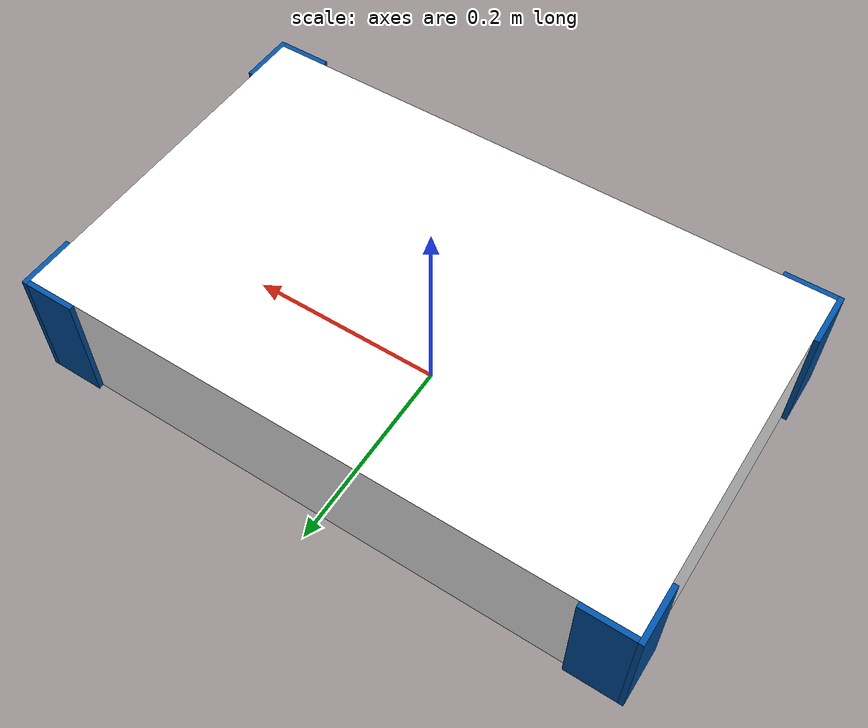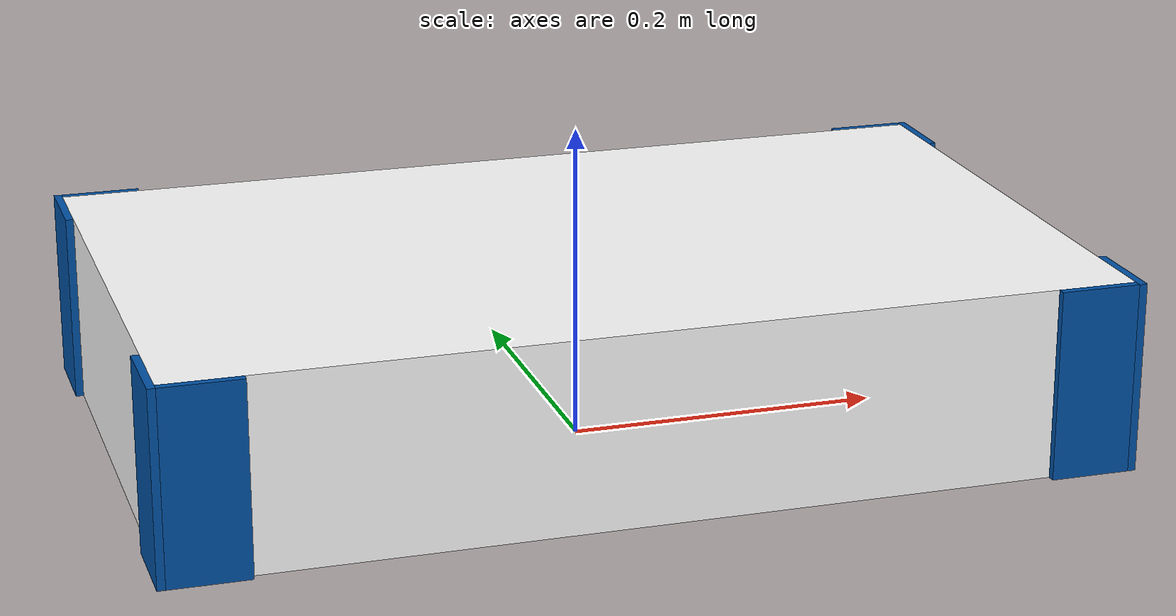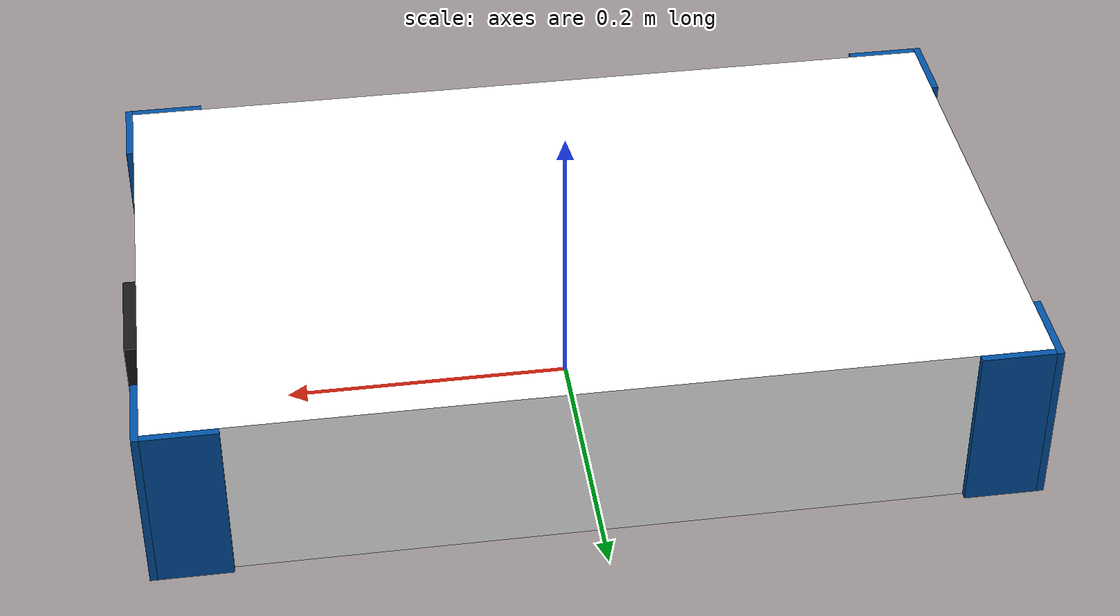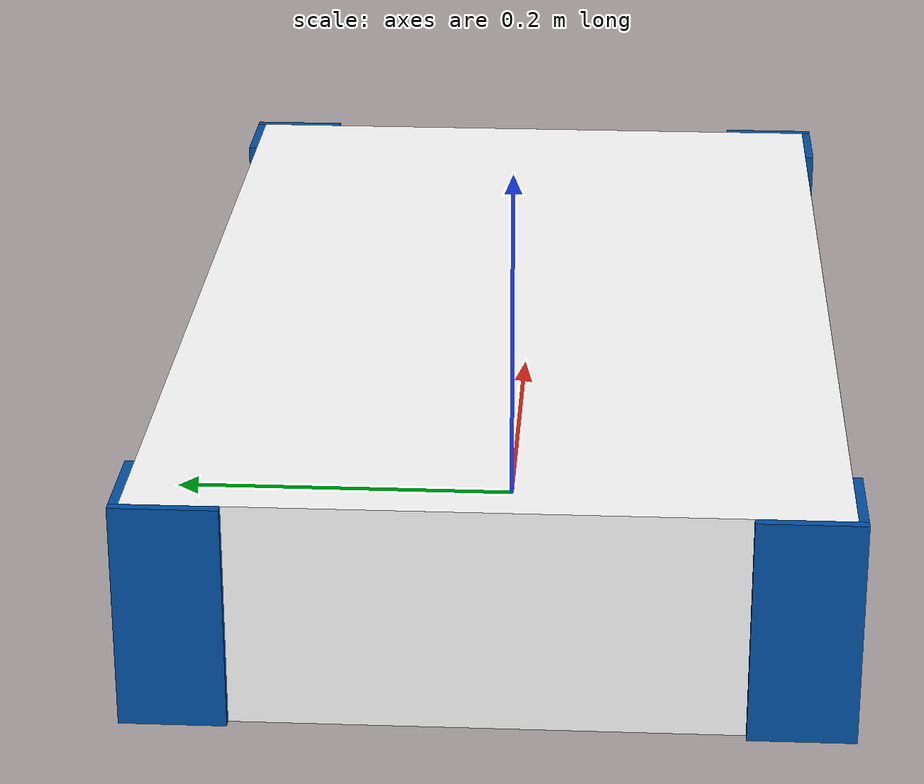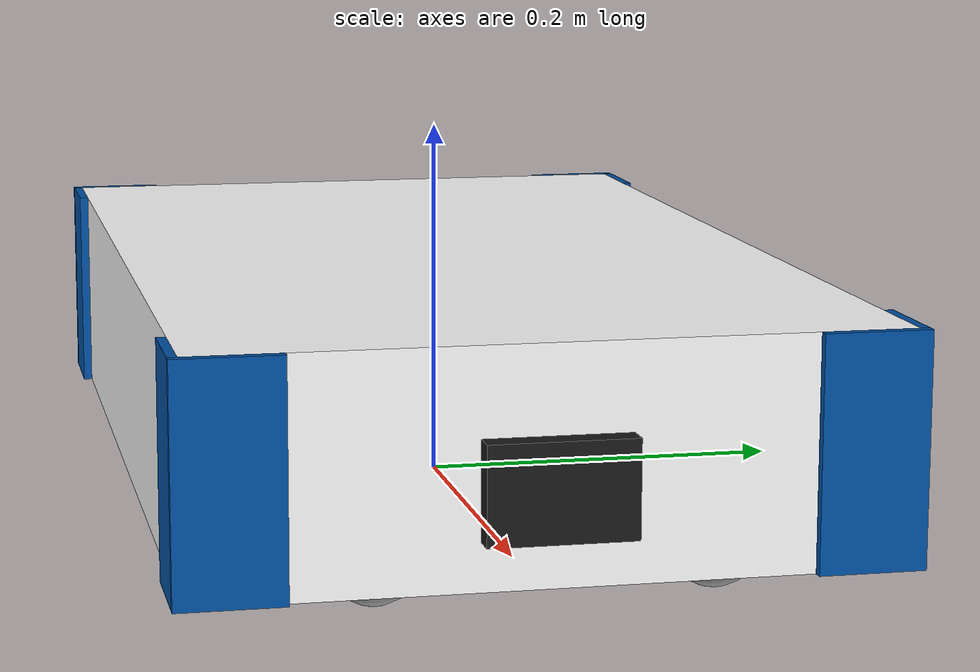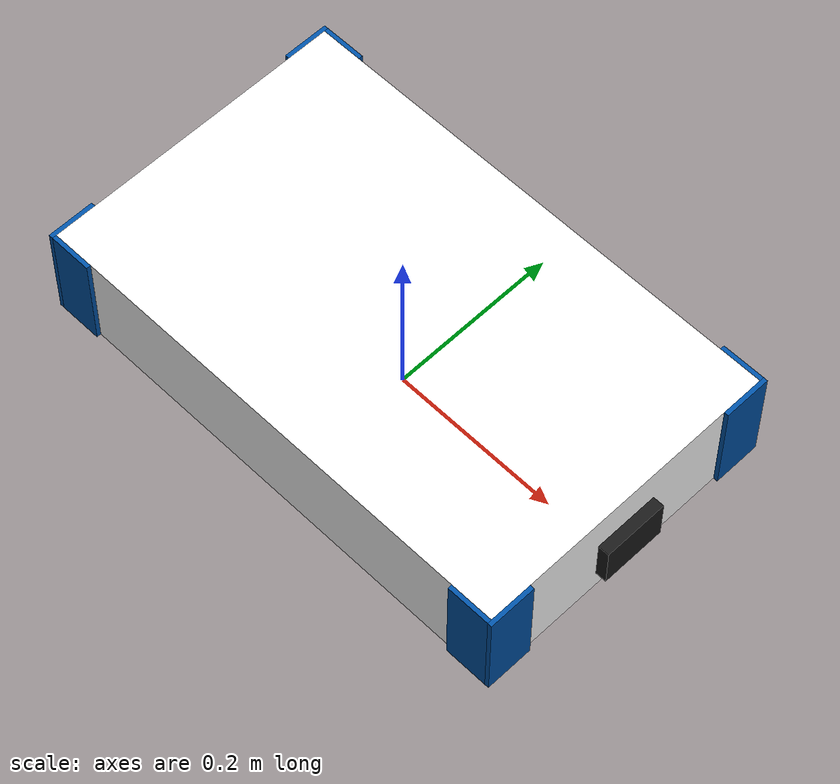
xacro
<?xml version="1.0"?>
<robot name="ad_r1m_sim" xmlns:xacro="http://www.ros.org/wiki/xacro">
    <xacro:arg name="robot_namespace" default="" />

    <!-- Build prefix based on namespace -->
    <xacro:property name="robot_namespace" value="$(arg robot_namespace)" />
    <xacro:property name="prefix" value="" />
    <xacro:if value="${robot_namespace != ''}">
        <xacro:property name="prefix" value="${robot_namespace}/" />
    </xacro:if>

    <!-- Instantiate base robot model -->
    <xacro:include filename="$(find ad_r1m_description)/urdf/ad_r1m_base.urdf.xacro" />
    <xacro:ad_r1m_base prefix="${prefix}" use_sim="true" />

    <ros2_control name="GZSimSystem" type="system">
        <hardware>
            <plugin>gz_ros2_control/GazeboSimSystem</plugin>
        </hardware>
        <joint name="left_wheel_joint">
            <command_interface name="velocity">
                <param name="min">-18</param>
                <param name="max">18</param>
            </command_interface>
            <state_interface name="velocity"/>
            <state_interface name="position"/>
        </joint>
        <joint name="right_wheel_joint">
            <command_interface name="velocity">
                <param name="min">-18</param>
                <param name="max">18</param>
            </command_interface>
            <state_interface name="velocity"/>
            <state_interface name="position"/>
        </joint>
    </ros2_control>

    <gazebo>
        <plugin filename="gz_ros2_control-system" name="gz_ros2_control::GazeboSimROS2ControlPlugin">
            <parameters>$(find ad_r1m_control)/config/controllers.yaml</parameters>
            <parameters>$(find ad_r1m_gazebo)/config/gaz_ros2_ctl_use_sim.yaml</parameters>
            <robot_param>robot_description</robot_param>
            <robot_param_node>robot_state_publisher</robot_param_node>
            <ros>
                <namespace>$(arg robot_namespace)</namespace>
            </ros>
        </plugin>
    </gazebo>
</robot>

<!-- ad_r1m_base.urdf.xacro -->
<robot xmlns:xacro="http://www.ros.org/wiki/xacro">

<xacro:include filename="_inertial_macros.xacro" />
<xacro:include filename="_lidar.xacro" />
<xacro:include filename="_tof_adtf3175d.xacro" />
<xacro:include filename="_imu_adis16470.xacro" />

<xacro:macro name="ad_r1m_base" params="prefix use_sim:=false">

    <xacro:property name="chassis_length" value="0.59"/>
    <xacro:property name="chassis_width" value="0.36"/>
    <xacro:property name="chassis_height" value="0.12"/>
    <xacro:property name="base_width" value="0.22"/>
    <xacro:property name="wheel_separation" value="0.29"/>
    <xacro:property name="chassis_clearance_ground" value="0.010"/>
    <xacro:property name="chassis_zoff" value="${(chassis_clearance_ground + chassis_height/2)}"/>
    <xacro:property name="chassis_mass" value="1.0"/>

    <xacro:property name="wheel_radius" value="0.05"/>
    <xacro:property name="wheel_width" value="0.025"/>
    <xacro:property name="wheel_mass" value="0.5"/> <!-- SLIP_FIX was 0.05 -->

    <xacro:property name="caster_wheel_radius" value="0.025"/>
    <xacro:property name="caster_wheel_mass" value="0.01"/>
    <xacro:property name="caster_wheel_zoff" value="${caster_wheel_radius}"/>

    <xacro:property name="bumper_thickness" value="0.005"/>
    <xacro:property name="bumper_length" value="0.05"/>
    <xacro:property name="bumper_height" value="${chassis_height}"/>

    <xacro:property name="camera_length" value="0.065"/>
    <xacro:property name="camera_height" value="0.05"/>
    <xacro:property name="camera_offset_above_chassis" value="0.025"/>
    <xacro:property name="camera_overhang" value="0.013"/>

    <material name="white"><color rgba="1.0 1.0 1.0 1.0"/></material>
    <material name="adi_blue"><color rgba="0.0 0.32 0.65 1.0"/></material>
    <material name="gray"><color rgba="0.65 0.65 0.65 1.0"/></material>
    <material name="black"><color rgba="0.1 0.1 0.1 1.0"/></material>

    <!-- BASE LINK -->

    <link name="${prefix}base_link"></link>

    <!-- HARDWARE MODULES -->

    <xacro:imu_adis16470 prefix="${prefix}" parent="${prefix}base_link">
        <origin xyz="0.180 0 ${wheel_radius}" rpy="${pi} 0 ${-pi/2}"/>
    </xacro:imu_adis16470>

    <xacro:tof_adtf3175d prefix="${prefix}" parent="${prefix}base_link" use_sim="${use_sim}">
        <origin xyz="${chassis_length/2 + camera_overhang - camera_length/2} 0 ${chassis_clearance_ground + camera_offset_above_chassis + camera_height/2}" rpy="0 0 0" />
    </xacro:tof_adtf3175d>

    <xacro:lidar prefix="${prefix}" parent="${prefix}base_link">
        <origin xyz="${chassis_length/2 + camera_overhang - camera_length/2} 0 ${chassis_clearance_ground + camera_offset_above_chassis + camera_height/2}" rpy="0 0 0" />
    </xacro:lidar>

    <!-- BASE_FOOTPRINT LINK -->

    <joint name="base_footprint_joint" type="fixed">
        <parent link="${prefix}base_link"/>
        <child link="${prefix}base_footprint"/>
        <origin xyz="0 0 0" rpy="0 0 0"/>
    </joint>

    <link name="${prefix}base_footprint"></link>

    <!-- CHASSIS LINK -->

    <joint name="chassis_joint" type="fixed">
        <parent link="${prefix}base_link"/>
        <child link="${prefix}chassis"/>
        <origin xyz="0 0 ${chassis_zoff}"/>
    </joint>

    <link name="${prefix}chassis">
        <visual>
            <geometry>
                <box size="${chassis_length} ${chassis_width} ${chassis_height}"/>
            </geometry>
            <material name="white"/>
        </visual>
        <collision>
            <geometry>
                <box size="${chassis_length} ${chassis_width} ${chassis_height}"/>
            </geometry>
        </collision>
        <xacro:inertial_box mass="10.0" x="${chassis_length}" y="${chassis_width}" z="${chassis_height}">
            <origin xyz="0 0 0" rpy="0 0 0"/>
        </xacro:inertial_box>
    </link>

    <gazebo reference="${prefix}chassis">
        <material>
            <ambient>1.0 1.0 1.0 1</ambient>
            <diffuse>1.0 1.0 1.0 1</diffuse>
            <specular>1.0 1.0 1.0 1</specular>
        </material>
    </gazebo>

    <!-- CORNER BUMPERS (L-shaped: lateral + front/rear sections) -->
    <xacro:macro name="corner_bumper" params="name x_reflect y_reflect">
        <!-- Lateral section (along Y, on the side) -->
        <joint name="${prefix}${name}_bumper_lat_joint" type="fixed">
            <parent link="${prefix}chassis"/>
            <child link="${prefix}${name}_bumper_lat"/>
	    <origin xyz="${x_reflect*(chassis_length/2 - bumper_length/2)} ${y_reflect*(chassis_width/2 + bumper_thickness/2)} 0" rpy="0 0 0"/>
        </joint>

        <link name="${prefix}${name}_bumper_lat">
            <visual>
                <geometry>
                    <box size="${bumper_length} ${bumper_thickness} ${bumper_height}"/>
                </geometry>
                <material name="adi_blue"/>
            </visual>
        </link>

        <gazebo reference="${prefix}${name}_bumper_lat">
            <material>
                <ambient>0.0 0.0 0.8 1</ambient>
                <diffuse>0.0 0.0 0.8 1</diffuse>
                <specular>0.0 0.0 0.8 1</specular>
            </material>
        </gazebo>

        <!-- Front/rear section (along X, on the front/back) -->
        <joint name="${prefix}${name}_bumper_front_joint" type="fixed">
            <parent link="${prefix}chassis"/>
            <child link="${prefix}${name}_bumper_front"/>
	    <origin xyz="${x_reflect*(chassis_length/2 + bumper_thickness/2)} ${y_reflect*(chassis_width/2 - bumper_length/2 + bumper_thickness/2)} 0" rpy="0 0 0"/>
        </joint>

        <link name="${prefix}${name}_bumper_front">
            <visual>
                <geometry>
                    <box size="${bumper_thickness} ${bumper_length + bumper_thickness} ${bumper_height}"/>
                </geometry>
                <material name="adi_blue"/>
            </visual>
        </link>

        <gazebo reference="${prefix}${name}_bumper_front">
            <material>
                <ambient>0.0 0.0 0.8 1</ambient>
                <diffuse>0.0 0.0 0.8 1</diffuse>
                <specular>0.0 0.0 0.8 1</specular>
            </material>
        </gazebo>
    </xacro:macro>

    <xacro:corner_bumper name="front_left" x_reflect="1" y_reflect="1"/>
    <xacro:corner_bumper name="front_right" x_reflect="1" y_reflect="-1"/>
    <xacro:corner_bumper name="rear_left" x_reflect="-1" y_reflect="1"/>
    <xacro:corner_bumper name="rear_right" x_reflect="-1" y_reflect="-1"/>

    <!-- LEFT WHEEL LINK -->

    <joint name="left_wheel_joint" type="continuous">
        <parent link="${prefix}base_link"/>
        <child link="${prefix}left_wheel"/>
        <origin xyz="0 ${wheel_separation/2} ${wheel_radius}" rpy="-${pi/2} 0 0" />
        <axis xyz="0 0 1"/>
    </joint>

    <link name="${prefix}left_wheel">
        <visual>
            <geometry>
                <cylinder radius="${wheel_radius}" length="${wheel_width}"/>
            </geometry>
            <material name="gray"/>
        </visual>
        <collision>
            <geometry>
                <cylinder radius="${wheel_radius}" length="${wheel_width}"/> <!-- SLIP_FIX was sphere -->
            </geometry>
        </collision>
        <xacro:inertial_cylinder mass="${wheel_mass}" length="${wheel_width}" radius="${wheel_radius}">
            <origin xyz="0 0 0" rpy="0 0 0"/>
        </xacro:inertial_cylinder>
    </link>

    <gazebo reference="${prefix}left_wheel">
        <material>
            <ambient>0.5 0.5 0.5 1</ambient>
            <diffuse>0.5 0.5 0.5 1</diffuse>
            <specular>0.5 0.5 0.5 1</specular>
        </material>
        <collision>
            <surface>
                <friction><ode><mu>1.5</mu><mu2>1.5</mu2></ode></friction>
                <contact><ode><kp>1e6</kp><kd>100</kd><min_depth>0.001</min_depth><max_vel>0.1</max_vel></ode></contact>
            </surface>
        </collision>
    </gazebo>

    <!-- RIGHT WHEEL LINK -->

    <joint name="right_wheel_joint" type="continuous">
        <parent link="${prefix}base_link"/>
        <child link="${prefix}right_wheel"/>
        <origin xyz="0 ${-wheel_separation/2} ${wheel_radius}" rpy="${pi/2} 0 0" />
        <axis xyz="0 0 -1"/>
    </joint>

    <link name="${prefix}right_wheel">
        <visual>
            <geometry>
                <cylinder radius="${wheel_radius}" length="${wheel_width}"/>
            </geometry>
            <material name="gray"/>
        </visual>
        <collision>
            <geometry>
                <cylinder radius="${wheel_radius}" length="${wheel_width}"/> <!-- SLIP_FIX was sphere -->
            </geometry>
        </collision>
        <xacro:inertial_cylinder mass="${wheel_mass}" length="${wheel_width}" radius="${wheel_radius}">
            <origin xyz="0 0 0" rpy="0 0 0"/>
        </xacro:inertial_cylinder>
    </link>

    <gazebo reference="${prefix}right_wheel">
        <material>
            <ambient>0.5 0.5 0.5 1</ambient>
            <diffuse>0.5 0.5 0.5 1</diffuse>
            <specular>0.5 0.5 0.5 1</specular>
        </material>
        <collision>
            <surface>
                <friction><ode><mu>1.5</mu><mu2>1.5</mu2></ode></friction>
                <contact><ode><kp>1e6</kp><kd>100</kd><min_depth>0.001</min_depth><max_vel>0.1</max_vel></ode></contact>
            </surface>
        </collision>
    </gazebo>

    <!-- CASTER WHEEL LINKS -->
    <xacro:macro name="caster_wheel" params="prefix parent x_reflect y_reflect">
        <link name="${prefix}_link">
            <visual>
                <geometry>
                    <sphere radius="${caster_wheel_radius}"/>
                </geometry>
                <material name="gray"/>
            </visual>
            <collision>
                <origin xyz="0 0 0" rpy="0 0 0"/>
                <geometry>
                    <sphere radius="${caster_wheel_radius}"/>
                </geometry>
            </collision>
            <xacro:inertial_sphere mass="${caster_wheel_mass}" radius="${caster_wheel_radius}">
                <origin xyz="0 0 0" rpy="0 0 0"/>
            </xacro:inertial_sphere>
        </link>

        <joint name="${prefix}_joint" type="fixed">
            <parent link="${parent}"/>
            <child link="${prefix}_link"/>
            <origin xyz="${x_reflect*(chassis_length/2-caster_wheel_radius)} ${y_reflect*(base_width/2-caster_wheel_radius)} ${caster_wheel_zoff}" rpy="0 0 0"/>
        </joint>

        <gazebo reference="${prefix}_link">
            <material>
                <ambient>0.5 0.5 0.5 1</ambient>
                <diffuse>0.5 0.5 0.5 1</diffuse>
                <specular>0.5 0.5 0.5 1</specular>
            </material>
            <collision>
                <surface>
                    <friction><ode><mu>0.001</mu><mu2>0.001</mu2></ode></friction>
                    <contact><ode><kp>1e6</kp><kd>100</kd><min_depth>0.001</min_depth><max_vel>0.1</max_vel></ode></contact>
                </surface>
            </collision>
        </gazebo>
    </xacro:macro>

    <xacro:caster_wheel parent="${prefix}base_link" prefix="${prefix}front_left_caster" x_reflect="1" y_reflect="1"/>
    <xacro:caster_wheel parent="${prefix}base_link" prefix="${prefix}front_right_caster" x_reflect="1" y_reflect="-1"/>
    <xacro:caster_wheel parent="${prefix}base_link" prefix="${prefix}rear_left_caster" x_reflect="-1" y_reflect="1"/>
    <xacro:caster_wheel parent="${prefix}base_link" prefix="${prefix}rear_right_caster" x_reflect="-1" y_reflect="-1"/>

</xacro:macro>
</robot>

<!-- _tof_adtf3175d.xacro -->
<robot xmlns:xacro="http://www.ros.org/wiki/xacro">

<xacro:macro name="tof_adtf3175d" params="prefix parent use_sim:=false *origin">

    <!-- Optical frame rotation differs: real driver flips image internally -->
    <xacro:property name="optical_sign" value="${-1 if use_sim else 1}"/>

    <joint name="cam1_adtf31xx_joint" type="fixed">
        <parent link="${parent}"/>
        <child link="${prefix}cam1_adtf31xx"/>
        <xacro:insert_block name="origin" />
    </joint>

    <link name="${prefix}cam1_adtf31xx">
        <inertial>
            <origin xyz="0 0 0" rpy="0 0 0"/>
            <mass value="0.125"/>
            <inertia ixx="0.001" ixy="0" ixz="0" iyy="0.001" iyz="0" izz="0.001" />
        </inertial>

        <collision>
            <origin xyz="0 0 0" rpy="0 0 0"/>
            <geometry>
                <box size="0.065 0.075 0.05"/>
            </geometry>
        </collision>

        <visual>
            <origin xyz="0 0 0" rpy="0 0 0"/>
            <geometry>
                <box size="0.065 0.075 0.05"/>
            </geometry>
            <material name="black"/>
        </visual>
    </link>

    <joint name="cam1_adtf31xx_optical_joint" type="fixed">
        <parent link="${prefix}cam1_adtf31xx"/>
        <child link="${prefix}cam1_adtf31xx_optical"/>
        <origin xyz="0 0 0" rpy="${optical_sign * pi/2} 0 ${optical_sign * pi/2}"/>
    </joint>
    <link name="${prefix}cam1_adtf31xx_optical"></link>

    <joint name="cam1_scan_joint" type="fixed">
        <parent link="${prefix}cam1_adtf31xx"/>
        <child link="${prefix}cam1_scan"/>
        <origin xyz="0 0 0" rpy="${pi} 0 0"/>
    </joint>
    <link name="${prefix}cam1_scan"></link>

    <gazebo reference="${prefix}cam1_adtf31xx">
        <material>
            <ambient>0.1 0.1 0.1 1</ambient>
            <diffuse>0.1 0.1 0.1 1</diffuse>
            <specular>0.1 0.1 0.1 1</specular>
        </material>

        <!-- 75deg FOV, 512x512, 0.3-5.0m range -->
        <sensor name="cam1_depth" type="rgbd_camera">
            <pose>0 0 0 0 0 0</pose>
            <visualize>true</visualize>
            <update_rate>30</update_rate>
            <topic>cam1</topic>
            <gz_frame_id>${prefix}cam1_adtf31xx</gz_frame_id>
            <camera>
                <horizontal_fov>1.309</horizontal_fov>
                <image>
                    <width>512</width>
                    <height>512</height>
                    <format>R8G8B8</format>
                </image>
                <clip>
                    <near>0.3</near>
                    <far>5.0</far>
                </clip>
                <noise>
                    <type>gaussian</type>
                    <mean>0.0</mean>
                    <stddev>0.005</stddev>
                </noise>
            </camera>
        </sensor>
    </gazebo>

</xacro:macro>
</robot>

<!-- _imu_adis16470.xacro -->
<robot xmlns:xacro="http://www.ros.org/wiki/xacro" >

<xacro:macro name="imu_adis16470" params="prefix parent *origin">

    <joint name="imu_joint" type="fixed">
        <parent link="${parent}"/>
        <child link="${prefix}imu"/>
        <xacro:insert_block name="origin" />
    </joint>

    <link name="${prefix}imu">
        <inertial>
            <origin xyz="0 0 0" rpy="0 0 0"/>
            <mass value="0.001"/>
            <inertia ixx="0.00001" ixy="0" ixz="0" iyy="0.00001" iyz="0" izz="0.00001" />
        </inertial>

        <collision>
            <origin xyz="0 0 0" rpy="0 0 0"/>
            <geometry>
                <box size="0.015 0.01 0.01"/>
            </geometry>
        </collision>

        <visual>
            <origin xyz="0 0 0" rpy="0 0 0"/>
            <geometry>
                <box size="0.015 0.01 0.01"/>
            </geometry>
            <material name="white">
                <color rgba="1 1 1 1"/>
            </material>
        </visual>
    </link>

    <gazebo reference="${prefix}imu">
        <sensor name="imu_sensor" type="imu">
        <always_on>true</always_on>
        <update_rate>100</update_rate>
        <visualize>true</visualize>
        <topic>imu</topic>
        <gz_frame_id>${prefix}imu</gz_frame_id>
        <imu>
            <angular_velocity>
                <x><noise type="gaussian">
                    <mean>0.0</mean>
                    <stddev>2e-4</stddev>
                    <bias_mean>0.0000075</bias_mean>
                    <bias_stddev>0.0000008</bias_stddev>
                </noise></x>
                <y><noise type="gaussian">
                    <mean>0.0</mean>
                    <stddev>2e-4</stddev>
                    <bias_mean>0.0000075</bias_mean>
                    <bias_stddev>0.0000008</bias_stddev>
                </noise></y>
                <z><noise type="gaussian">
                    <mean>0.0</mean>
                    <stddev>2e-4</stddev>
                    <bias_mean>0.0000075</bias_mean>
                    <bias_stddev>0.0000008</bias_stddev>
                </noise></z>
            </angular_velocity>
            <linear_acceleration>
                <x><noise type="gaussian">
                    <mean>0.0</mean>
                    <stddev>1.7e-2</stddev>
                    <bias_mean>0.1</bias_mean>
                    <bias_stddev>0.001</bias_stddev>
                </noise></x>
                <y><noise type="gaussian">
                    <mean>0.0</mean>
                    <stddev>1.7e-2</stddev>
                    <bias_mean>0.1</bias_mean>
                    <bias_stddev>0.001</bias_stddev>
                </noise></y>
                <z><noise type="gaussian">
                    <mean>-9.81</mean>    <!-- Offset by gravitational acceleration -->
                    <stddev>1.7e-2</stddev>
                    <bias_mean>0.0</bias_mean>  <!-- Reduced bias -->
                    <bias_stddev>0.0</bias_stddev>  <!-- Removed bias variation -->
                </noise></z>
            </linear_acceleration>
        </imu>
        </sensor>
    </gazebo>

</xacro:macro>
</robot>
